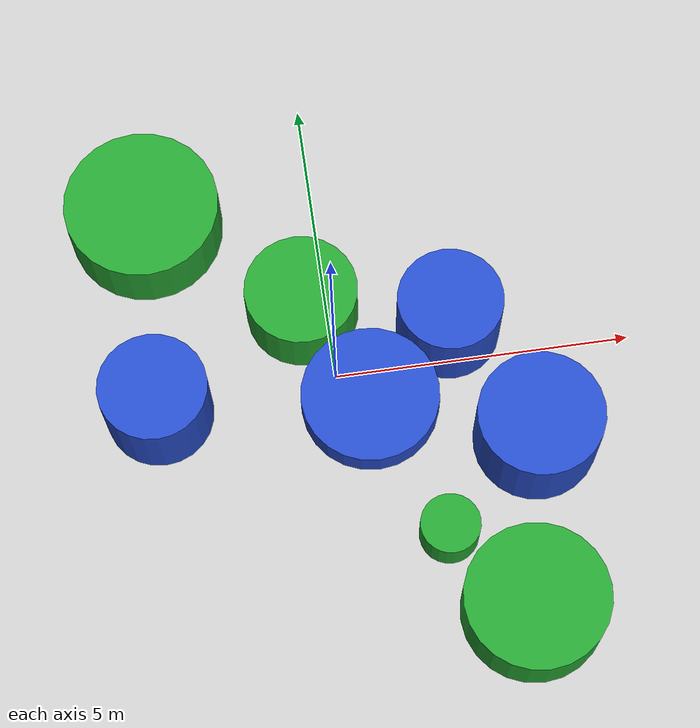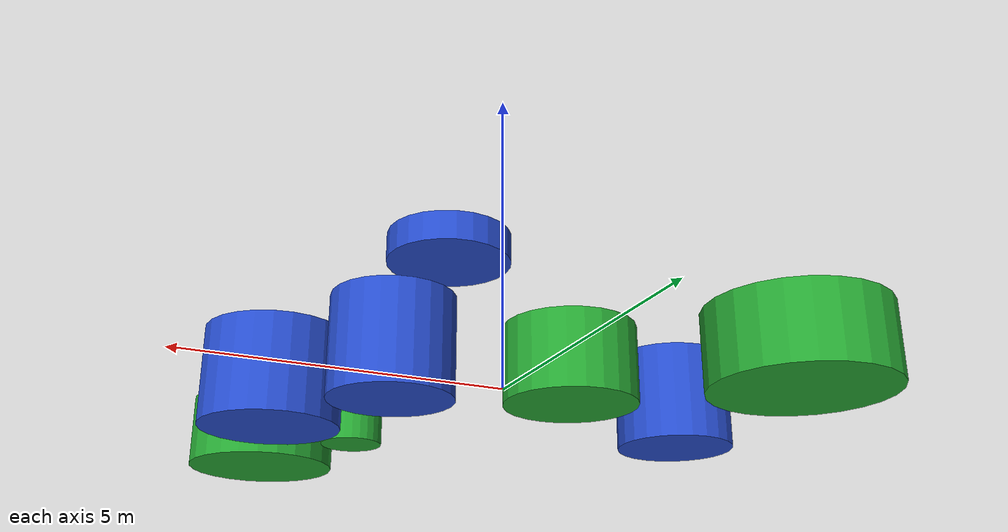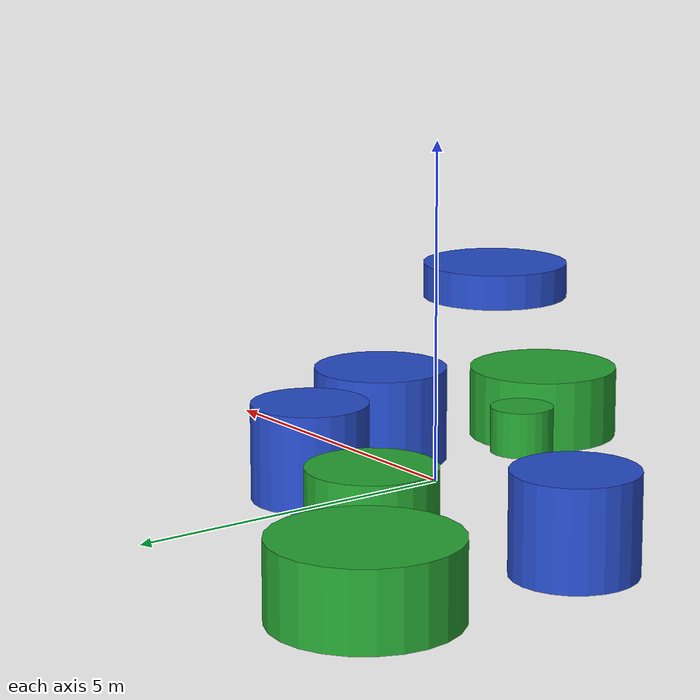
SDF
<?xml version='1.0'?>
<sdf version='1.7'>
  <model name='cylinders'>
    <link name='link'>
      <inertial>
        <mass>1</mass>
        <inertia>
          <ixx>0.145833</ixx>
          <ixy>0</ixy>
          <ixz>0</ixz>
          <iyy>0.145833</iyy>
          <iyz>0</iyz>
          <izz>0.125</izz>
        </inertia>
        <pose>0 0 0 0 -0 0</pose>
      </inertial>
      <self_collide>0</self_collide>
      <enable_wind>0</enable_wind>
      <kinematic>0</kinematic>
      <pose>1.4956 -2.88183 -0 0 -0 0</pose>
      <gravity>1</gravity>
      <visual name='visual'>
        <geometry>
          <cylinder>
            <radius>0.5</radius>
            <length>0.724634</length>
          </cylinder>
        </geometry>
        <material>
          <script>
            <name>Gazebo/Green</name>
            <uri>file://media/materials/scripts/gazebo.material</uri>
          </script>
          <shader type='pixel'>
            <normal_map>__default__</normal_map>
          </shader>
          <ambient>0 1 0 1</ambient>
          <diffuse>0 1 0 1</diffuse>
          <specular>0.1 0.1 0.1 1</specular>
          <emissive>0 0 0 1</emissive>
        </material>
        <pose>0 0 0 0 -0 0</pose>
        <transparency>0</transparency>
        <cast_shadows>1</cast_shadows>
      </visual>
      <collision name='collision'>
        <laser_retro>0</laser_retro>
        <max_contacts>10</max_contacts>
        <pose>0 0 0 0 -0 0</pose>
        <geometry>
          <cylinder>
            <radius>0.5</radius>
            <length>0.724634</length>
          </cylinder>
        </geometry>
        <surface>
          <friction>
            <ode>
              <mu>1</mu>
              <mu2>1</mu2>
              <fdir1>0 0 0</fdir1>
              <slip1>0</slip1>
              <slip2>0</slip2>
            </ode>
            <torsional>
              <coefficient>1</coefficient>
              <patch_radius>0</patch_radius>
              <surface_radius>0</surface_radius>
              <use_patch_radius>1</use_patch_radius>
              <ode>
                <slip>0</slip>
              </ode>
            </torsional>
          </friction>
          <bounce>
            <restitution_coefficient>0</restitution_coefficient>
            <threshold>1e+06</threshold>
          </bounce>
          <contact>
            <collide_without_contact>0</collide_without_contact>
            <collide_without_contact_bitmask>1</collide_without_contact_bitmask>
            <collide_bitmask>1</collide_bitmask>
            <ode>
              <soft_cfm>0</soft_cfm>
              <soft_erp>0.2</soft_erp>
              <kp>1e+13</kp>
              <kd>1</kd>
              <max_vel>0.01</max_vel>
              <min_depth>0</min_depth>
            </ode>
            <bullet>
              <split_impulse>1</split_impulse>
              <split_impulse_penetration_threshold>-0.01</split_impulse_penetration_threshold>
              <soft_cfm>0</soft_cfm>
              <soft_erp>0.2</soft_erp>
              <kp>1e+13</kp>
              <kd>1</kd>
            </bullet>
          </contact>
        </surface>
      </collision>
    </link>
    <link name='link_1'>
      <inertial>
        <mass>2.27495</mass>
        <inertia>
          <ixx>0.689443</ixx>
          <ixy>0</ixy>
          <ixz>0</ixz>
          <iyy>0.689443</iyy>
          <iyz>0</iyz>
          <izz>1.2824</izz>
        </inertia>
        <pose>0 0 0 0 -0 0</pose>
      </inertial>
      <pose>0.383458 -1.38879 2.78476 0 -0 0</pose>
      <gravity>1</gravity>
      <self_collide>0</self_collide>
      <kinematic>0</kinematic>
      <enable_wind>0</enable_wind>
      <visual name='visual'>
        <pose>0 0 0 0 -0 0</pose>
        <geometry>
          <cylinder>
            <radius>1.06179</radius>
            <length>0.504459</length>
          </cylinder>
        </geometry>
        <material>
          <lighting>1</lighting>
          <script>
            <uri>file://media/materials/scripts/gazebo.material</uri>
            <name>Gazebo/Blue</name>
          </script>
          <shader type='pixel'>
            <normal_map>__default__</normal_map>
          </shader>
          <ambient>0 0 1 1</ambient>
          <diffuse>0 0 1 1</diffuse>
          <specular>0.1 0.1 0.1 1</specular>
          <emissive>0 0 0 1</emissive>
        </material>
        <transparency>0</transparency>
        <cast_shadows>1</cast_shadows>
      </visual>
      <collision name='collision'>
        <laser_retro>0</laser_retro>
        <max_contacts>10</max_contacts>
        <pose>0 0 0 0 -0 0</pose>
        <geometry>
          <cylinder>
            <radius>1.06179</radius>
            <length>0.504459</length>
          </cylinder>
        </geometry>
        <surface>
          <friction>
            <ode>
              <mu>1</mu>
              <mu2>1</mu2>
              <fdir1>0 0 0</fdir1>
              <slip1>0</slip1>
              <slip2>0</slip2>
            </ode>
            <torsional>
              <coefficient>1</coefficient>
              <patch_radius>0</patch_radius>
              <surface_radius>0</surface_radius>
              <use_patch_radius>1</use_patch_radius>
              <ode>
                <slip>0</slip>
              </ode>
            </torsional>
          </friction>
          <bounce>
            <restitution_coefficient>0</restitution_coefficient>
            <threshold>1e+06</threshold>
          </bounce>
          <contact>
            <collide_without_contact>0</collide_without_contact>
            <collide_without_contact_bitmask>1</collide_without_contact_bitmask>
            <collide_bitmask>1</collide_bitmask>
            <ode>
              <soft_cfm>0</soft_cfm>
              <soft_erp>0.2</soft_erp>
              <kp>1e+13</kp>
              <kd>1</kd>
              <max_vel>0.01</max_vel>
              <min_depth>0</min_depth>
            </ode>
            <bullet>
              <split_impulse>1</split_impulse>
              <split_impulse_penetration_threshold>-0.01</split_impulse_penetration_threshold>
              <soft_cfm>0</soft_cfm>
              <soft_erp>0.2</soft_erp>
              <kp>1e+13</kp>
              <kd>1</kd>
            </bullet>
          </contact>
        </surface>
      </collision>
    </link>
    <link name='link_1_clone'>
      <inertial>
        <mass>6.7087</mass>
        <inertia>
          <ixx>3.12806</ixx>
          <ixy>0</ixy>
          <ixz>0</ixz>
          <iyy>3.12806</iyy>
          <iyz>0</iyz>
          <izz>3.78168</izz>
        </inertia>
        <pose>0 0 0 0 -0 0</pose>
      </inertial>
      <pose>3.21937 -1.38798 0.137683 0 -0 0</pose>
      <gravity>1</gravity>
      <self_collide>0</self_collide>
      <kinematic>0</kinematic>
      <enable_wind>0</enable_wind>
      <visual name='visual'>
        <pose>0 0 0 0 -0 0</pose>
        <geometry>
          <cylinder>
            <radius>1.06179</radius>
            <length>1.48763</length>
          </cylinder>
        </geometry>
        <material>
          <lighting>1</lighting>
          <script>
            <uri>file://media/materials/scripts/gazebo.material</uri>
            <name>Gazebo/Blue</name>
          </script>
          <shader type='pixel'>
            <normal_map>__default__</normal_map>
          </shader>
          <ambient>0 0 1 1</ambient>
          <diffuse>0 0 1 1</diffuse>
          <specular>0.1 0.1 0.1 1</specular>
          <emissive>0 0 0 1</emissive>
        </material>
        <transparency>0</transparency>
        <cast_shadows>1</cast_shadows>
      </visual>
      <collision name='collision'>
        <laser_retro>0</laser_retro>
        <max_contacts>10</max_contacts>
        <pose>0 0 0 0 -0 0</pose>
        <geometry>
          <cylinder>
            <radius>1.06179</radius>
            <length>1.48763</length>
          </cylinder>
        </geometry>
        <surface>
          <friction>
            <ode>
              <mu>1</mu>
              <mu2>1</mu2>
              <fdir1>0 0 0</fdir1>
              <slip1>0</slip1>
              <slip2>0</slip2>
            </ode>
            <torsional>
              <coefficient>1</coefficient>
              <patch_radius>0</patch_radius>
              <surface_radius>0</surface_radius>
              <use_patch_radius>1</use_patch_radius>
              <ode>
                <slip>0</slip>
              </ode>
            </torsional>
          </friction>
          <bounce>
            <restitution_coefficient>0</restitution_coefficient>
            <threshold>1e+06</threshold>
          </bounce>
          <contact>
            <collide_without_contact>0</collide_without_contact>
            <collide_without_contact_bitmask>1</collide_without_contact_bitmask>
            <collide_bitmask>1</collide_bitmask>
            <ode>
              <soft_cfm>0</soft_cfm>
              <soft_erp>0.2</soft_erp>
              <kp>1e+13</kp>
              <kd>1</kd>
              <max_vel>0.01</max_vel>
              <min_depth>0</min_depth>
            </ode>
            <bullet>
              <split_impulse>1</split_impulse>
              <split_impulse_penetration_threshold>-0.01</split_impulse_penetration_threshold>
              <soft_cfm>0</soft_cfm>
              <soft_erp>0.2</soft_erp>
              <kp>1e+13</kp>
              <kd>1</kd>
            </bullet>
          </contact>
        </surface>
      </collision>
    </link>
    <link name='link_1_clone_clone'>
      <inertial>
        <mass>4.9954</mass>
        <inertia>
          <ixx>1.96963</ixx>
          <ixy>0</ixy>
          <ixz>0</ixz>
          <iyy>1.96963</iyy>
          <iyz>0</iyz>
          <izz>2.09676</izz>
        </inertia>
        <pose>0 0 0 0 -0 0</pose>
      </inertial>
      <pose>-3.04093 -0.036489 0.137683 0 -0 0</pose>
      <gravity>1</gravity>
      <self_collide>0</self_collide>
      <kinematic>0</kinematic>
      <enable_wind>0</enable_wind>
      <visual name='visual'>
        <pose>0 0 0 0 -0 0</pose>
        <geometry>
          <cylinder>
            <radius>0.916229</radius>
            <length>1.48763</length>
          </cylinder>
        </geometry>
        <material>
          <lighting>1</lighting>
          <script>
            <uri>file://media/materials/scripts/gazebo.material</uri>
            <name>Gazebo/Blue</name>
          </script>
          <shader type='pixel'>
            <normal_map>__default__</normal_map>
          </shader>
          <ambient>0 0 1 1</ambient>
          <diffuse>0 0 1 1</diffuse>
          <specular>0.1 0.1 0.1 1</specular>
          <emissive>0 0 0 1</emissive>
        </material>
        <transparency>0</transparency>
        <cast_shadows>1</cast_shadows>
      </visual>
      <collision name='collision'>
        <laser_retro>0</laser_retro>
        <max_contacts>10</max_contacts>
        <pose>0 0 0 0 -0 0</pose>
        <geometry>
          <cylinder>
            <radius>0.916229</radius>
            <length>1.48763</length>
          </cylinder>
        </geometry>
        <surface>
          <friction>
            <ode>
              <mu>1</mu>
              <mu2>1</mu2>
              <fdir1>0 0 0</fdir1>
              <slip1>0</slip1>
              <slip2>0</slip2>
            </ode>
            <torsional>
              <coefficient>1</coefficient>
              <patch_radius>0</patch_radius>
              <surface_radius>0</surface_radius>
              <use_patch_radius>1</use_patch_radius>
              <ode>
                <slip>0</slip>
              </ode>
            </torsional>
          </friction>
          <bounce>
            <restitution_coefficient>0</restitution_coefficient>
            <threshold>1e+06</threshold>
          </bounce>
          <contact>
            <collide_without_contact>0</collide_without_contact>
            <collide_without_contact_bitmask>1</collide_without_contact_bitmask>
            <collide_bitmask>1</collide_bitmask>
            <ode>
              <soft_cfm>0</soft_cfm>
              <soft_erp>0.2</soft_erp>
              <kp>1e+13</kp>
              <kd>1</kd>
              <max_vel>0.01</max_vel>
              <min_depth>0</min_depth>
            </ode>
            <bullet>
              <split_impulse>1</split_impulse>
              <split_impulse_penetration_threshold>-0.01</split_impulse_penetration_threshold>
              <soft_cfm>0</soft_cfm>
              <soft_erp>0.2</soft_erp>
              <kp>1e+13</kp>
              <kd>1</kd>
            </bullet>
          </contact>
        </surface>
      </collision>
    </link>
    <link name='link_1_clone_clone_0'>
      <inertial>
        <mass>4.79829</mass>
        <inertia>
          <ixx>1.85218</ixx>
          <ixy>0</ixy>
          <ixz>0</ixz>
          <iyy>1.85218</iyy>
          <iyz>0</iyz>
          <izz>1.93456</izz>
        </inertia>
        <pose>0 0 0 0 -0 0</pose>
      </inertial>
      <pose>2.0546 0.796876 0.137683 0 -0 0</pose>
      <gravity>1</gravity>
      <self_collide>0</self_collide>
      <kinematic>0</kinematic>
      <enable_wind>0</enable_wind>
      <visual name='visual'>
        <pose>0 0 0 0 -0 0</pose>
        <geometry>
          <cylinder>
            <radius>0.897972</radius>
            <length>1.48763</length>
          </cylinder>
        </geometry>
        <material>
          <lighting>1</lighting>
          <script>
            <uri>file://media/materials/scripts/gazebo.material</uri>
            <name>Gazebo/Blue</name>
          </script>
          <shader type='pixel'>
            <normal_map>__default__</normal_map>
          </shader>
          <ambient>0 0 1 1</ambient>
          <diffuse>0 0 1 1</diffuse>
          <specular>0.1 0.1 0.1 1</specular>
          <emissive>0 0 0 1</emissive>
        </material>
        <transparency>0</transparency>
        <cast_shadows>1</cast_shadows>
      </visual>
      <collision name='collision'>
        <laser_retro>0</laser_retro>
        <max_contacts>10</max_contacts>
        <pose>0 0 0 0 -0 0</pose>
        <geometry>
          <cylinder>
            <radius>0.897972</radius>
            <length>1.48763</length>
          </cylinder>
        </geometry>
        <surface>
          <friction>
            <ode>
              <mu>1</mu>
              <mu2>1</mu2>
              <fdir1>0 0 0</fdir1>
              <slip1>0</slip1>
              <slip2>0</slip2>
            </ode>
            <torsional>
              <coefficient>1</coefficient>
              <patch_radius>0</patch_radius>
              <surface_radius>0</surface_radius>
              <use_patch_radius>1</use_patch_radius>
              <ode>
                <slip>0</slip>
              </ode>
            </torsional>
          </friction>
          <bounce>
            <restitution_coefficient>0</restitution_coefficient>
            <threshold>1e+06</threshold>
          </bounce>
          <contact>
            <collide_without_contact>0</collide_without_contact>
            <collide_without_contact_bitmask>1</collide_without_contact_bitmask>
            <collide_bitmask>1</collide_bitmask>
            <ode>
              <soft_cfm>0</soft_cfm>
              <soft_erp>0.2</soft_erp>
              <kp>1e+13</kp>
              <kd>1</kd>
              <max_vel>0.01</max_vel>
              <min_depth>0</min_depth>
            </ode>
            <bullet>
              <split_impulse>1</split_impulse>
              <split_impulse_penetration_threshold>-0.01</split_impulse_penetration_threshold>
              <soft_cfm>0</soft_cfm>
              <soft_erp>0.2</soft_erp>
              <kp>1e+13</kp>
              <kd>1</kd>
            </bullet>
          </contact>
        </surface>
      </collision>
    </link>
    <link name='link_clone'>
      <inertial>
        <mass>9.08225</mass>
        <inertia>
          <ixx>4.26432</ixx>
          <ixy>0</ixy>
          <ixz>0</ixz>
          <iyy>4.26432</iyy>
          <iyz>0</iyz>
          <izz>6.57214</izz>
        </inertia>
        <pose>0 0 0 0 -0 0</pose>
      </inertial>
      <self_collide>0</self_collide>
      <enable_wind>0</enable_wind>
      <kinematic>0</kinematic>
      <pose>2.67395 -4.30568 -0 0 -0 0</pose>
      <gravity>1</gravity>
      <visual name='visual'>
        <geometry>
          <cylinder>
            <radius>1.20302</radius>
            <length>1.13689</length>
          </cylinder>
        </geometry>
        <material>
          <script>
            <name>Gazebo/Green</name>
            <uri>file://media/materials/scripts/gazebo.material</uri>
          </script>
          <shader type='pixel'>
            <normal_map>__default__</normal_map>
          </shader>
          <ambient>0 1 0 1</ambient>
          <diffuse>0 1 0 1</diffuse>
          <specular>0.1 0.1 0.1 1</specular>
          <emissive>0 0 0 1</emissive>
        </material>
        <pose>0 0 0 0 -0 0</pose>
        <transparency>0</transparency>
        <cast_shadows>1</cast_shadows>
      </visual>
      <collision name='collision'>
        <laser_retro>0</laser_retro>
        <max_contacts>10</max_contacts>
        <pose>0 0 0 0 -0 0</pose>
        <geometry>
          <cylinder>
            <radius>1.20302</radius>
            <length>1.13689</length>
          </cylinder>
        </geometry>
        <surface>
          <friction>
            <ode>
              <mu>1</mu>
              <mu2>1</mu2>
              <fdir1>0 0 0</fdir1>
              <slip1>0</slip1>
              <slip2>0</slip2>
            </ode>
            <torsional>
              <coefficient>1</coefficient>
              <patch_radius>0</patch_radius>
              <surface_radius>0</surface_radius>
              <use_patch_radius>1</use_patch_radius>
              <ode>
                <slip>0</slip>
              </ode>
            </torsional>
          </friction>
          <bounce>
            <restitution_coefficient>0</restitution_coefficient>
            <threshold>1e+06</threshold>
          </bounce>
          <contact>
            <collide_without_contact>0</collide_without_contact>
            <collide_without_contact_bitmask>1</collide_without_contact_bitmask>
            <collide_bitmask>1</collide_bitmask>
            <ode>
              <soft_cfm>0</soft_cfm>
              <soft_erp>0.2</soft_erp>
              <kp>1e+13</kp>
              <kd>1</kd>
              <max_vel>0.01</max_vel>
              <min_depth>0</min_depth>
            </ode>
            <bullet>
              <split_impulse>1</split_impulse>
              <split_impulse_penetration_threshold>-0.01</split_impulse_penetration_threshold>
              <soft_cfm>0</soft_cfm>
              <soft_erp>0.2</soft_erp>
              <kp>1e+13</kp>
              <kd>1</kd>
            </bullet>
          </contact>
        </surface>
      </collision>
    </link>
    <link name='link_clone_clone'>
      <inertial>
        <mass>5.8557</mass>
        <inertia>
          <ixx>1.99672</ixx>
          <ixy>0</ixy>
          <ixz>0</ixz>
          <iyy>1.99672</iyy>
          <iyz>0</iyz>
          <izz>2.73201</izz>
        </inertia>
        <pose>0 0 0 0 -0 0</pose>
      </inertial>
      <self_collide>0</self_collide>
      <enable_wind>0</enable_wind>
      <kinematic>0</kinematic>
      <pose>-0.394112 1.44624 0 0 -0 0</pose>
      <gravity>1</gravity>
      <visual name='visual'>
        <geometry>
          <cylinder>
            <radius>0.965976</radius>
            <length>1.13689</length>
          </cylinder>
        </geometry>
        <material>
          <script>
            <name>Gazebo/Green</name>
            <uri>file://media/materials/scripts/gazebo.material</uri>
          </script>
          <shader type='pixel'>
            <normal_map>__default__</normal_map>
          </shader>
          <ambient>0 1 0 1</ambient>
          <diffuse>0 1 0 1</diffuse>
          <specular>0.1 0.1 0.1 1</specular>
          <emissive>0 0 0 1</emissive>
        </material>
        <pose>0 0 0 0 -0 0</pose>
        <transparency>0</transparency>
        <cast_shadows>1</cast_shadows>
      </visual>
      <collision name='collision'>
        <laser_retro>0</laser_retro>
        <max_contacts>10</max_contacts>
        <pose>0 0 0 0 -0 0</pose>
        <geometry>
          <cylinder>
            <radius>0.965976</radius>
            <length>1.13689</length>
          </cylinder>
        </geometry>
        <surface>
          <friction>
            <ode>
              <mu>1</mu>
              <mu2>1</mu2>
              <fdir1>0 0 0</fdir1>
              <slip1>0</slip1>
              <slip2>0</slip2>
            </ode>
            <torsional>
              <coefficient>1</coefficient>
              <patch_radius>0</patch_radius>
              <surface_radius>0</surface_radius>
              <use_patch_radius>1</use_patch_radius>
              <ode>
                <slip>0</slip>
              </ode>
            </torsional>
          </friction>
          <bounce>
            <restitution_coefficient>0</restitution_coefficient>
            <threshold>1e+06</threshold>
          </bounce>
          <contact>
            <collide_without_contact>0</collide_without_contact>
            <collide_without_contact_bitmask>1</collide_without_contact_bitmask>
            <collide_bitmask>1</collide_bitmask>
            <ode>
              <soft_cfm>0</soft_cfm>
              <soft_erp>0.2</soft_erp>
              <kp>1e+13</kp>
              <kd>1</kd>
              <max_vel>0.01</max_vel>
              <min_depth>0</min_depth>
            </ode>
            <bullet>
              <split_impulse>1</split_impulse>
              <split_impulse_penetration_threshold>-0.01</split_impulse_penetration_threshold>
              <soft_cfm>0</soft_cfm>
              <soft_erp>0.2</soft_erp>
              <kp>1e+13</kp>
              <kd>1</kd>
            </bullet>
          </contact>
        </surface>
      </collision>
    </link>
    <link name='link_clone_clone_clone'>
      <inertial>
        <mass>11.1133</mass>
        <inertia>
          <ixx>6.11721</ixx>
          <ixy>0</ixy>
          <ixz>0</ixz>
          <iyy>6.11721</iyy>
          <iyz>0</iyz>
          <izz>9.84038</izz>
        </inertia>
        <pose>0 0 0 0 -0 0</pose>
      </inertial>
      <self_collide>0</self_collide>
      <enable_wind>0</enable_wind>
      <kinematic>0</kinematic>
      <pose>-2.90735 3.3985 0 0 -0 0</pose>
      <gravity>1</gravity>
      <visual name='visual'>
        <geometry>
          <cylinder>
            <radius>1.33076</radius>
            <length>1.13689</length>
          </cylinder>
        </geometry>
        <material>
          <script>
            <name>Gazebo/Green</name>
            <uri>file://media/materials/scripts/gazebo.material</uri>
          </script>
          <shader type='pixel'>
            <normal_map>__default__</normal_map>
          </shader>
          <ambient>0 1 0 1</ambient>
          <diffuse>0 1 0 1</diffuse>
          <specular>0.1 0.1 0.1 1</specular>
          <emissive>0 0 0 1</emissive>
        </material>
        <pose>0 0 0 0 -0 0</pose>
        <transparency>0</transparency>
        <cast_shadows>1</cast_shadows>
      </visual>
      <collision name='collision'>
        <laser_retro>0</laser_retro>
        <max_contacts>10</max_contacts>
        <pose>0 0 0 0 -0 0</pose>
        <geometry>
          <cylinder>
            <radius>1.33076</radius>
            <length>1.13689</length>
          </cylinder>
        </geometry>
        <surface>
          <friction>
            <ode>
              <mu>1</mu>
              <mu2>1</mu2>
              <fdir1>0 0 0</fdir1>
              <slip1>0</slip1>
              <slip2>0</slip2>
            </ode>
            <torsional>
              <coefficient>1</coefficient>
              <patch_radius>0</patch_radius>
              <surface_radius>0</surface_radius>
              <use_patch_radius>1</use_patch_radius>
              <ode>
                <slip>0</slip>
              </ode>
            </torsional>
          </friction>
          <bounce>
            <restitution_coefficient>0</restitution_coefficient>
            <threshold>1e+06</threshold>
          </bounce>
          <contact>
            <collide_without_contact>0</collide_without_contact>
            <collide_without_contact_bitmask>1</collide_without_contact_bitmask>
            <collide_bitmask>1</collide_bitmask>
            <ode>
              <soft_cfm>0</soft_cfm>
              <soft_erp>0.2</soft_erp>
              <kp>1e+13</kp>
              <kd>1</kd>
              <max_vel>0.01</max_vel>
              <min_depth>0</min_depth>
            </ode>
            <bullet>
              <split_impulse>1</split_impulse>
              <split_impulse_penetration_threshold>-0.01</split_impulse_penetration_threshold>
              <soft_cfm>0</soft_cfm>
              <soft_erp>0.2</soft_erp>
              <kp>1e+13</kp>
              <kd>1</kd>
            </bullet>
          </contact>
        </surface>
      </collision>
    </link>
    <static>0</static>
    <allow_auto_disable>1</allow_auto_disable>
  </model>
</sdf>
